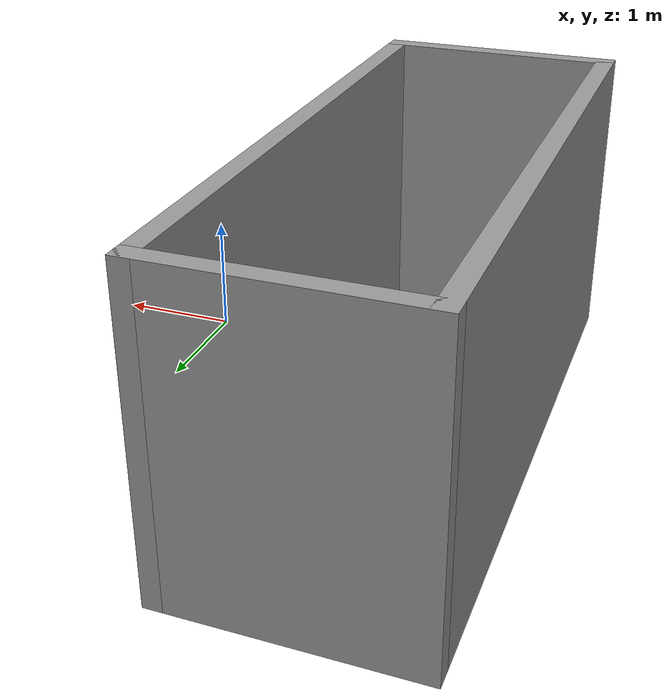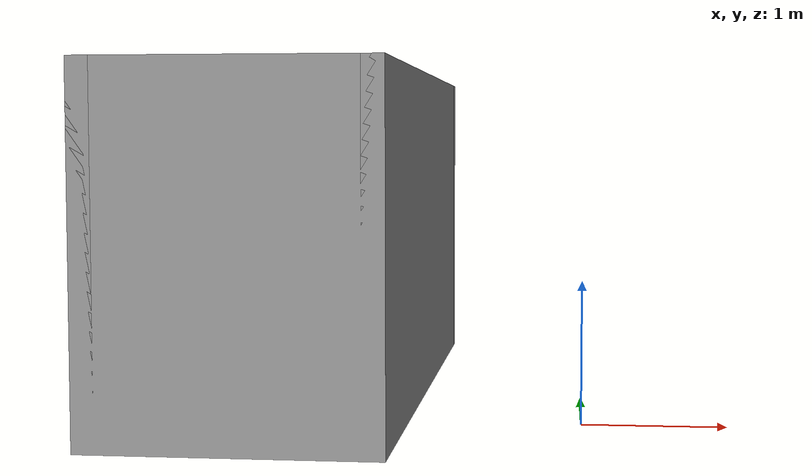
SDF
<?xml version='1.0'?>
<sdf version='1.7'>
  <model name='Shelf1'>
    <pose>-1.60143 1.22931 0 0 -0 0</pose>
    <link name='Wall_43'>
      <collision name='Wall_43_Collision'>
        <geometry>
          <box>
            <size>5 0.15 2.5</size>
          </box>
        </geometry>
        <pose>0 0 1.25 0 -0 0</pose>
      </collision>
      <visual name='Wall_43_Visual'>
        <pose>0 0 1.25 0 -0 0</pose>
        <geometry>
          <box>
            <size>5 0.15 2.5</size>
          </box>
        </geometry>
        <material>
          <script>
            <uri>file://media/materials/scripts/gazebo.material</uri>
            <name>Gazebo/Grey</name>
          </script>
          <ambient>1 1 1 1</ambient>
        </material>
        <meta>
          <layer>0</layer>
        </meta>
      </visual>
      <pose>-1.52643 -0 0 0 -0 -1.5708</pose>
    </link>
    <link name='Wall_44'>
      <collision name='Wall_44_Collision'>
        <geometry>
          <box>
            <size>2 0.15 2.5</size>
          </box>
        </geometry>
        <pose>0 0 1.25 0 -0 0</pose>
      </collision>
      <visual name='Wall_44_Visual'>
        <pose>0 0 1.25 0 -0 0</pose>
        <geometry>
          <box>
            <size>2 0.15 2.5</size>
          </box>
        </geometry>
        <material>
          <script>
            <uri>file://media/materials/scripts/gazebo.material</uri>
            <name>Gazebo/Grey</name>
          </script>
          <ambient>1 1 1 1</ambient>
        </material>
        <meta>
          <layer>0</layer>
        </meta>
      </visual>
      <pose>-0.60143 -2.425 0 0 -0 0</pose>
    </link>
    <link name='Wall_45'>
      <collision name='Wall_45_Collision'>
        <geometry>
          <box>
            <size>5 0.15 2.5</size>
          </box>
        </geometry>
        <pose>0 0 1.25 0 -0 0</pose>
      </collision>
      <visual name='Wall_45_Visual'>
        <pose>0 0 1.25 0 -0 0</pose>
        <geometry>
          <box>
            <size>5 0.15 2.5</size>
          </box>
        </geometry>
        <material>
          <script>
            <uri>file://media/materials/scripts/gazebo.material</uri>
            <name>Gazebo/Grey</name>
          </script>
          <ambient>1 1 1 1</ambient>
        </material>
        <meta>
          <layer>0</layer>
        </meta>
      </visual>
      <pose>0.32357 -0 0 0 -0 1.5708</pose>
    </link>
    <link name='Wall_47'>
      <collision name='Wall_47_Collision'>
        <geometry>
          <box>
            <size>2 0.15 2.5</size>
          </box>
        </geometry>
        <pose>0 0 1.25 0 -0 0</pose>
      </collision>
      <visual name='Wall_47_Visual'>
        <pose>0 0 1.25 0 -0 0</pose>
        <geometry>
          <box>
            <size>2 0.15 2.5</size>
          </box>
        </geometry>
        <material>
          <script>
            <uri>file://media/materials/scripts/gazebo.material</uri>
            <name>Gazebo/Grey</name>
          </script>
          <ambient>1 1 1 1</ambient>
        </material>
        <meta>
          <layer>0</layer>
        </meta>
      </visual>
      <pose>-0.60143 2.425 0 0 -0 3.14159</pose>
    </link>
    <static>1</static>
  </model>
</sdf>
